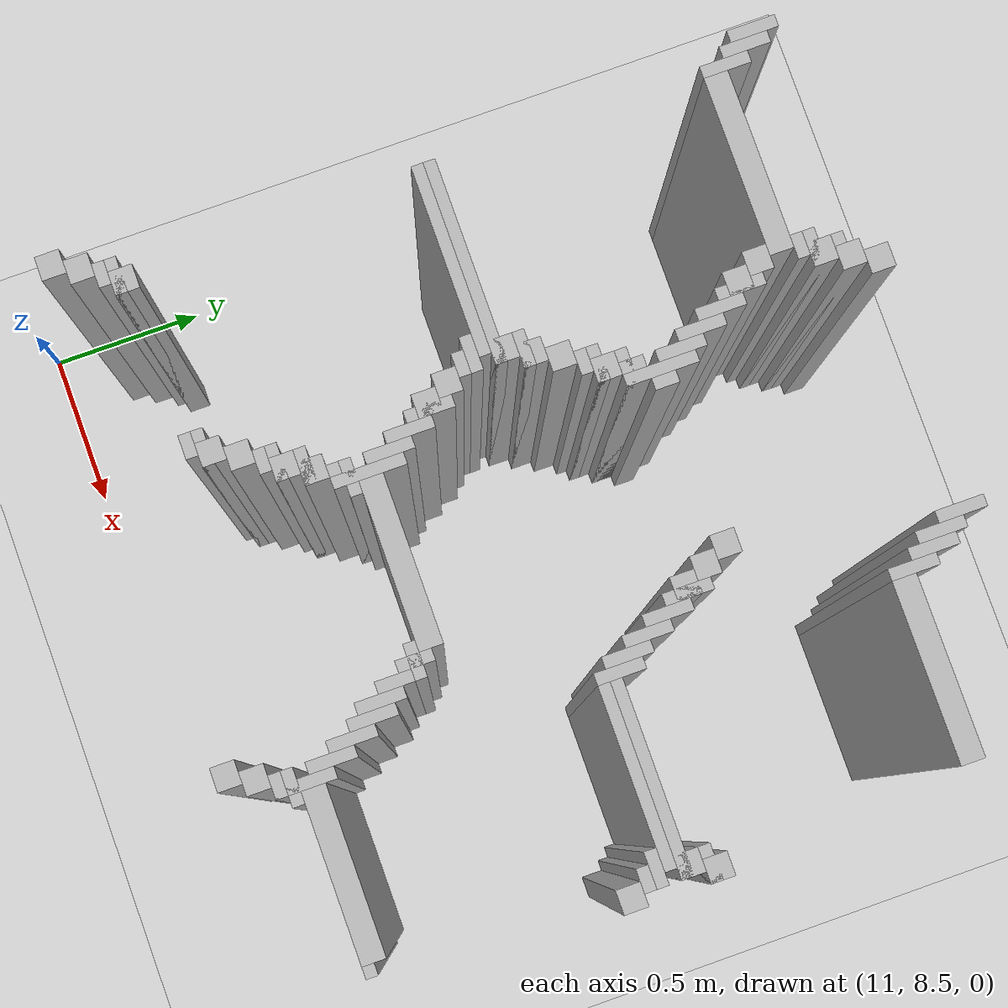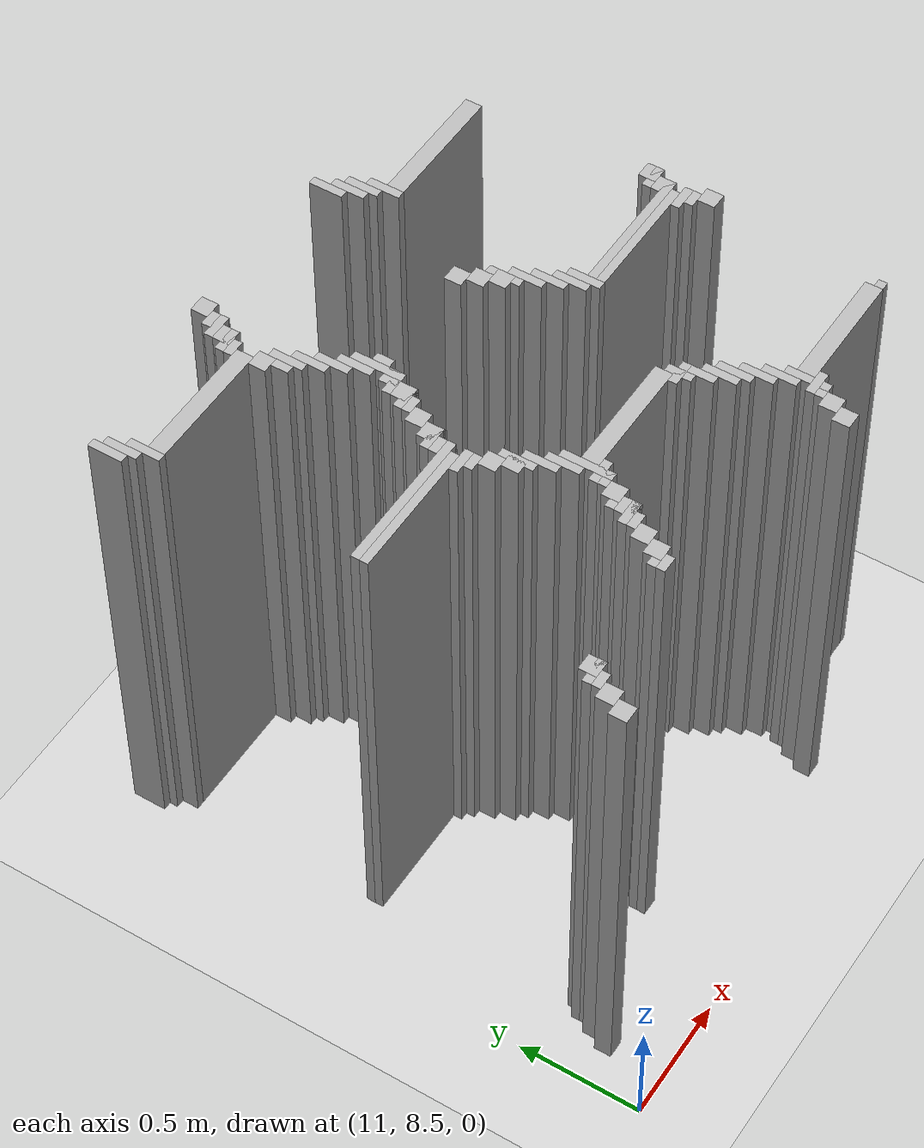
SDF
<sdf version="1.6">
 <world name="slam_world">
  <model name="ground_plane">
   <static>true</static>
   <link name="link">
    <collision name="collision">
     <geometry><plane><normal>0 0 1</normal><size>100 100</size></plane></geometry>
    </collision>
    <visual name="visual">
     <geometry><plane><normal>0 0 1</normal><size>100 100</size></plane></geometry>
     <material>
      <ambient>0.8 0.8 0.8 1</ambient>
      <diffuse>0.8 0.8 0.8 1</diffuse>
      <specular>0.8 0.8 0.8 1</specular>
     </material>
    </visual>
   </link>
  </model>
  <model name="wall_2224">
   <static>true</static>
   <pose>11.902552204176333 10.8584686774942 1.0 0 0 0</pose>
   <link name="link">
    <collision name="collision">
     <geometry><box><size>0.06960556844547564 0.06960556844547564 2.0</size></box></geometry>
    </collision>
    <visual name="visual">
     <geometry><box><size>0.06960556844547564 0.06960556844547564 2.0</size></box></geometry>
     <material><ambient>0.5 0.5 0.5 1</ambient><diffuse>0.7 0.7 0.7 1</diffuse></material>
    </visual>
   </link>
  </model>
  <model name="wall_2225">
   <static>true</static>
   <pose>12.616009280742459 10.82366589327146 1.0 0 0 0</pose>
   <link name="link">
    <collision name="collision">
     <geometry><box><size>0.03480278422273782 0.13921113689095127 2.0</size></box></geometry>
    </collision>
    <visual name="visual">
     <geometry><box><size>0.03480278422273782 0.13921113689095127 2.0</size></box></geometry>
     <material><ambient>0.5 0.5 0.5 1</ambient><diffuse>0.7 0.7 0.7 1</diffuse></material>
    </visual>
   </link>
  </model>
  <model name="wall_2238">
   <static>true</static>
   <pose>11.189095127610209 10.754060324825986 1.0 0 0 0</pose>
   <link name="link">
    <collision name="collision">
     <geometry><box><size>0.03480278422273782 0.13921113689095127 2.0</size></box></geometry>
    </collision>
    <visual name="visual">
     <geometry><box><size>0.03480278422273782 0.13921113689095127 2.0</size></box></geometry>
     <material><ambient>0.5 0.5 0.5 1</ambient><diffuse>0.7 0.7 0.7 1</diffuse></material>
    </visual>
   </link>
  </model>
  <model name="wall_2239">
   <static>true</static>
   <pose>11.867749419953595 10.788863109048723 1.0 0 0 0</pose>
   <link name="link">
    <collision name="collision">
     <geometry><box><size>0.06960556844547564 0.06960556844547564 2.0</size></box></geometry>
    </collision>
    <visual name="visual">
     <geometry><box><size>0.06960556844547564 0.06960556844547564 2.0</size></box></geometry>
     <material><ambient>0.5 0.5 0.5 1</ambient><diffuse>0.7 0.7 0.7 1</diffuse></material>
    </visual>
   </link>
  </model>
  <model name="wall_2240">
   <static>true</static>
   <pose>12.650812064965196 10.754060324825986 1.0 0 0 0</pose>
   <link name="link">
    <collision name="collision">
     <geometry><box><size>0.03480278422273782 0.13921113689095127 2.0</size></box></geometry>
    </collision>
    <visual name="visual">
     <geometry><box><size>0.03480278422273782 0.13921113689095127 2.0</size></box></geometry>
     <material><ambient>0.5 0.5 0.5 1</ambient><diffuse>0.7 0.7 0.7 1</diffuse></material>
    </visual>
   </link>
  </model>
  <model name="wall_2253">
   <static>true</static>
   <pose>11.223897911832946 10.719257540603248 1.0 0 0 0</pose>
   <link name="link">
    <collision name="collision">
     <geometry><box><size>0.03480278422273782 0.13921113689095127 2.0</size></box></geometry>
    </collision>
    <visual name="visual">
     <geometry><box><size>0.03480278422273782 0.13921113689095127 2.0</size></box></geometry>
     <material><ambient>0.5 0.5 0.5 1</ambient><diffuse>0.7 0.7 0.7 1</diffuse></material>
    </visual>
   </link>
  </model>
  <model name="wall_2254">
   <static>true</static>
   <pose>11.850348027842227 10.771461716937354 1.0 0 0 0</pose>
   <link name="link">
    <collision name="collision">
     <geometry><box><size>0.10440835266821345 0.03480278422273782 2.0</size></box></geometry>
    </collision>
    <visual name="visual">
     <geometry><box><size>0.10440835266821345 0.03480278422273782 2.0</size></box></geometry>
     <material><ambient>0.5 0.5 0.5 1</ambient><diffuse>0.7 0.7 0.7 1</diffuse></material>
    </visual>
   </link>
  </model>
  <model name="wall_2255">
   <static>true</static>
   <pose>12.685614849187935 10.719257540603248 1.0 0 0 0</pose>
   <link name="link">
    <collision name="collision">
     <geometry><box><size>0.03480278422273782 0.13921113689095127 2.0</size></box></geometry>
    </collision>
    <visual name="visual">
     <geometry><box><size>0.03480278422273782 0.13921113689095127 2.0</size></box></geometry>
     <material><ambient>0.5 0.5 0.5 1</ambient><diffuse>0.7 0.7 0.7 1</diffuse></material>
    </visual>
   </link>
  </model>
  <model name="wall_2263">
   <static>true</static>
   <pose>11.832946635730858 10.719257540603248 1.0 0 0 0</pose>
   <link name="link">
    <collision name="collision">
     <geometry><box><size>0.06960556844547564 0.06960556844547564 2.0</size></box></geometry>
    </collision>
    <visual name="visual">
     <geometry><box><size>0.06960556844547564 0.06960556844547564 2.0</size></box></geometry>
     <material><ambient>0.5 0.5 0.5 1</ambient><diffuse>0.7 0.7 0.7 1</diffuse></material>
    </visual>
   </link>
  </model>
  <model name="wall_2275">
   <static>true</static>
   <pose>11.258700696055683 10.649651972157772 1.0 0 0 0</pose>
   <link name="link">
    <collision name="collision">
     <geometry><box><size>0.03480278422273782 0.13921113689095127 2.0</size></box></geometry>
    </collision>
    <visual name="visual">
     <geometry><box><size>0.03480278422273782 0.13921113689095127 2.0</size></box></geometry>
     <material><ambient>0.5 0.5 0.5 1</ambient><diffuse>0.7 0.7 0.7 1</diffuse></material>
    </visual>
   </link>
  </model>
  <model name="wall_2276">
   <static>true</static>
   <pose>11.81554524361949 10.70185614849188 1.0 0 0 0</pose>
   <link name="link">
    <collision name="collision">
     <geometry><box><size>0.10440835266821345 0.03480278422273782 2.0</size></box></geometry>
    </collision>
    <visual name="visual">
     <geometry><box><size>0.10440835266821345 0.03480278422273782 2.0</size></box></geometry>
     <material><ambient>0.5 0.5 0.5 1</ambient><diffuse>0.7 0.7 0.7 1</diffuse></material>
    </visual>
   </link>
  </model>
  <model name="wall_2277">
   <static>true</static>
   <pose>12.720417633410673 10.649651972157772 1.0 0 0 0</pose>
   <link name="link">
    <collision name="collision">
     <geometry><box><size>0.03480278422273782 0.13921113689095127 2.0</size></box></geometry>
    </collision>
    <visual name="visual">
     <geometry><box><size>0.03480278422273782 0.13921113689095127 2.0</size></box></geometry>
     <material><ambient>0.5 0.5 0.5 1</ambient><diffuse>0.7 0.7 0.7 1</diffuse></material>
    </visual>
   </link>
  </model>
  <model name="wall_2285">
   <static>true</static>
   <pose>11.79814385150812 10.66705336426914 1.0 0 0 0</pose>
   <link name="link">
    <collision name="collision">
     <geometry><box><size>0.06960556844547564 0.03480278422273782 2.0</size></box></geometry>
    </collision>
    <visual name="visual">
     <geometry><box><size>0.06960556844547564 0.03480278422273782 2.0</size></box></geometry>
     <material><ambient>0.5 0.5 0.5 1</ambient><diffuse>0.7 0.7 0.7 1</diffuse></material>
    </visual>
   </link>
  </model>
  <model name="wall_2298">
   <static>true</static>
   <pose>11.537122969837586 10.614849187935034 1.0 0 0 0</pose>
   <link name="link">
    <collision name="collision">
     <geometry><box><size>0.5220417633410672 0.06960556844547564 2.0</size></box></geometry>
    </collision>
    <visual name="visual">
     <geometry><box><size>0.5220417633410672 0.06960556844547564 2.0</size></box></geometry>
     <material><ambient>0.5 0.5 0.5 1</ambient><diffuse>0.7 0.7 0.7 1</diffuse></material>
    </visual>
   </link>
  </model>
  <model name="wall_2299">
   <static>true</static>
   <pose>12.998839907192576 10.614849187935034 1.0 0 0 0</pose>
   <link name="link">
    <collision name="collision">
     <geometry><box><size>0.5220417633410672 0.06960556844547564 2.0</size></box></geometry>
    </collision>
    <visual name="visual">
     <geometry><box><size>0.5220417633410672 0.06960556844547564 2.0</size></box></geometry>
     <material><ambient>0.5 0.5 0.5 1</ambient><diffuse>0.7 0.7 0.7 1</diffuse></material>
    </visual>
   </link>
  </model>
  <model name="wall_2314">
   <static>true</static>
   <pose>11.79814385150812 10.54524361948956 1.0 0 0 0</pose>
   <link name="link">
    <collision name="collision">
     <geometry><box><size>0.06960556844547564 0.06960556844547564 2.0</size></box></geometry>
    </collision>
    <visual name="visual">
     <geometry><box><size>0.06960556844547564 0.06960556844547564 2.0</size></box></geometry>
     <material><ambient>0.5 0.5 0.5 1</ambient><diffuse>0.7 0.7 0.7 1</diffuse></material>
    </visual>
   </link>
  </model>
  <model name="wall_2329">
   <static>true</static>
   <pose>11.850348027842227 10.475638051044083 1.0 0 0 0</pose>
   <link name="link">
    <collision name="collision">
     <geometry><box><size>0.03480278422273782 0.13921113689095127 2.0</size></box></geometry>
    </collision>
    <visual name="visual">
     <geometry><box><size>0.03480278422273782 0.13921113689095127 2.0</size></box></geometry>
     <material><ambient>0.5 0.5 0.5 1</ambient><diffuse>0.7 0.7 0.7 1</diffuse></material>
    </visual>
   </link>
  </model>
  <model name="wall_2344">
   <static>true</static>
   <pose>11.832946635730858 10.475638051044083 1.0 0 0 0</pose>
   <link name="link">
    <collision name="collision">
     <geometry><box><size>0.06960556844547564 0.06960556844547564 2.0</size></box></geometry>
    </collision>
    <visual name="visual">
     <geometry><box><size>0.06960556844547564 0.06960556844547564 2.0</size></box></geometry>
     <material><ambient>0.5 0.5 0.5 1</ambient><diffuse>0.7 0.7 0.7 1</diffuse></material>
    </visual>
   </link>
  </model>
  <model name="wall_2359">
   <static>true</static>
   <pose>11.885150812064964 10.406032482598608 1.0 0 0 0</pose>
   <link name="link">
    <collision name="collision">
     <geometry><box><size>0.03480278422273782 0.13921113689095127 2.0</size></box></geometry>
    </collision>
    <visual name="visual">
     <geometry><box><size>0.03480278422273782 0.13921113689095127 2.0</size></box></geometry>
     <material><ambient>0.5 0.5 0.5 1</ambient><diffuse>0.7 0.7 0.7 1</diffuse></material>
    </visual>
   </link>
  </model>
  <model name="wall_2379">
   <static>true</static>
   <pose>11.919953596287703 10.336426914153131 1.0 0 0 0</pose>
   <link name="link">
    <collision name="collision">
     <geometry><box><size>0.03480278422273782 0.13921113689095127 2.0</size></box></geometry>
    </collision>
    <visual name="visual">
     <geometry><box><size>0.03480278422273782 0.13921113689095127 2.0</size></box></geometry>
     <material><ambient>0.5 0.5 0.5 1</ambient><diffuse>0.7 0.7 0.7 1</diffuse></material>
    </visual>
   </link>
  </model>
  <model name="wall_2394">
   <static>true</static>
   <pose>11.95475638051044 10.266821345707656 1.0 0 0 0</pose>
   <link name="link">
    <collision name="collision">
     <geometry><box><size>0.03480278422273782 0.13921113689095127 2.0</size></box></geometry>
    </collision>
    <visual name="visual">
     <geometry><box><size>0.03480278422273782 0.13921113689095127 2.0</size></box></geometry>
     <material><ambient>0.5 0.5 0.5 1</ambient><diffuse>0.7 0.7 0.7 1</diffuse></material>
    </visual>
   </link>
  </model>
  <model name="wall_2409">
   <static>true</static>
   <pose>11.989559164733178 10.19721577726218 1.0 0 0 0</pose>
   <link name="link">
    <collision name="collision">
     <geometry><box><size>0.03480278422273782 0.2088167053364269 2.0</size></box></geometry>
    </collision>
    <visual name="visual">
     <geometry><box><size>0.03480278422273782 0.2088167053364269 2.0</size></box></geometry>
     <material><ambient>0.5 0.5 0.5 1</ambient><diffuse>0.7 0.7 0.7 1</diffuse></material>
    </visual>
   </link>
  </model>
  <model name="wall_2429">
   <static>true</static>
   <pose>12.024361948955915 10.19721577726218 1.0 0 0 0</pose>
   <link name="link">
    <collision name="collision">
     <geometry><box><size>0.03480278422273782 0.06960556844547564 2.0</size></box></geometry>
    </collision>
    <visual name="visual">
     <geometry><box><size>0.03480278422273782 0.06960556844547564 2.0</size></box></geometry>
     <material><ambient>0.5 0.5 0.5 1</ambient><diffuse>0.7 0.7 0.7 1</diffuse></material>
    </visual>
   </link>
  </model>
  <model name="wall_2430">
   <static>true</static>
   <pose>12.494199535962876 10.19721577726218 1.0 0 0 0</pose>
   <link name="link">
    <collision name="collision">
     <geometry><box><size>0.06960556844547564 0.06960556844547564 2.0</size></box></geometry>
    </collision>
    <visual name="visual">
     <geometry><box><size>0.06960556844547564 0.06960556844547564 2.0</size></box></geometry>
     <material><ambient>0.5 0.5 0.5 1</ambient><diffuse>0.7 0.7 0.7 1</diffuse></material>
    </visual>
   </link>
  </model>
  <model name="wall_2448">
   <static>true</static>
   <pose>11.97215777262181 10.127610208816705 1.0 0 0 0</pose>
   <link name="link">
    <collision name="collision">
     <geometry><box><size>0.06960556844547564 0.06960556844547564 2.0</size></box></geometry>
    </collision>
    <visual name="visual">
     <geometry><box><size>0.06960556844547564 0.06960556844547564 2.0</size></box></geometry>
     <material><ambient>0.5 0.5 0.5 1</ambient><diffuse>0.7 0.7 0.7 1</diffuse></material>
    </visual>
   </link>
  </model>
  <model name="wall_2449">
   <static>true</static>
   <pose>12.529002320185615 10.127610208816705 1.0 0 0 0</pose>
   <link name="link">
    <collision name="collision">
     <geometry><box><size>0.06960556844547564 0.06960556844547564 2.0</size></box></geometry>
    </collision>
    <visual name="visual">
     <geometry><box><size>0.06960556844547564 0.06960556844547564 2.0</size></box></geometry>
     <material><ambient>0.5 0.5 0.5 1</ambient><diffuse>0.7 0.7 0.7 1</diffuse></material>
    </visual>
   </link>
  </model>
  <model name="wall_2462">
   <static>true</static>
   <pose>11.95475638051044 10.110208816705336 1.0 0 0 0</pose>
   <link name="link">
    <collision name="collision">
     <geometry><box><size>0.10440835266821345 0.03480278422273782 2.0</size></box></geometry>
    </collision>
    <visual name="visual">
     <geometry><box><size>0.10440835266821345 0.03480278422273782 2.0</size></box></geometry>
     <material><ambient>0.5 0.5 0.5 1</ambient><diffuse>0.7 0.7 0.7 1</diffuse></material>
    </visual>
   </link>
  </model>
  <model name="wall_2463">
   <static>true</static>
   <pose>12.581206496519721 10.058004640371228 1.0 0 0 0</pose>
   <link name="link">
    <collision name="collision">
     <geometry><box><size>0.03480278422273782 0.13921113689095127 2.0</size></box></geometry>
    </collision>
    <visual name="visual">
     <geometry><box><size>0.03480278422273782 0.13921113689095127 2.0</size></box></geometry>
     <material><ambient>0.5 0.5 0.5 1</ambient><diffuse>0.7 0.7 0.7 1</diffuse></material>
    </visual>
   </link>
  </model>
  <model name="wall_2476">
   <static>true</static>
   <pose>11.937354988399072 10.058004640371228 1.0 0 0 0</pose>
   <link name="link">
    <collision name="collision">
     <geometry><box><size>0.06960556844547564 0.06960556844547564 2.0</size></box></geometry>
    </collision>
    <visual name="visual">
     <geometry><box><size>0.06960556844547564 0.06960556844547564 2.0</size></box></geometry>
     <material><ambient>0.5 0.5 0.5 1</ambient><diffuse>0.7 0.7 0.7 1</diffuse></material>
    </visual>
   </link>
  </model>
  <model name="wall_2477">
   <static>true</static>
   <pose>12.563805104408353 10.058004640371228 1.0 0 0 0</pose>
   <link name="link">
    <collision name="collision">
     <geometry><box><size>0.06960556844547564 0.06960556844547564 2.0</size></box></geometry>
    </collision>
    <visual name="visual">
     <geometry><box><size>0.06960556844547564 0.06960556844547564 2.0</size></box></geometry>
     <material><ambient>0.5 0.5 0.5 1</ambient><diffuse>0.7 0.7 0.7 1</diffuse></material>
    </visual>
   </link>
  </model>
  <model name="wall_2490">
   <static>true</static>
   <pose>11.919953596287703 10.04060324825986 1.0 0 0 0</pose>
   <link name="link">
    <collision name="collision">
     <geometry><box><size>0.10440835266821345 0.03480278422273782 2.0</size></box></geometry>
    </collision>
    <visual name="visual">
     <geometry><box><size>0.10440835266821345 0.03480278422273782 2.0</size></box></geometry>
     <material><ambient>0.5 0.5 0.5 1</ambient><diffuse>0.7 0.7 0.7 1</diffuse></material>
    </visual>
   </link>
  </model>
  <model name="wall_2491">
   <static>true</static>
   <pose>12.616009280742459 9.988399071925754 1.0 0 0 0</pose>
   <link name="link">
    <collision name="collision">
     <geometry><box><size>0.03480278422273782 0.13921113689095127 2.0</size></box></geometry>
    </collision>
    <visual name="visual">
     <geometry><box><size>0.03480278422273782 0.13921113689095127 2.0</size></box></geometry>
     <material><ambient>0.5 0.5 0.5 1</ambient><diffuse>0.7 0.7 0.7 1</diffuse></material>
    </visual>
   </link>
  </model>
  <model name="wall_2500">
   <static>true</static>
   <pose>11.902552204176333 10.005800464037122 1.0 0 0 0</pose>
   <link name="link">
    <collision name="collision">
     <geometry><box><size>0.06960556844547564 0.03480278422273782 2.0</size></box></geometry>
    </collision>
    <visual name="visual">
     <geometry><box><size>0.06960556844547564 0.03480278422273782 2.0</size></box></geometry>
     <material><ambient>0.5 0.5 0.5 1</ambient><diffuse>0.7 0.7 0.7 1</diffuse></material>
    </visual>
   </link>
  </model>
  <model name="wall_2513">
   <static>true</static>
   <pose>11.867749419953595 9.953596287703016 1.0 0 0 0</pose>
   <link name="link">
    <collision name="collision">
     <geometry><box><size>0.06960556844547564 0.06960556844547564 2.0</size></box></geometry>
    </collision>
    <visual name="visual">
     <geometry><box><size>0.06960556844547564 0.06960556844547564 2.0</size></box></geometry>
     <material><ambient>0.5 0.5 0.5 1</ambient><diffuse>0.7 0.7 0.7 1</diffuse></material>
    </visual>
   </link>
  </model>
  <model name="wall_2514">
   <static>true</static>
   <pose>12.650812064965196 9.918793503480279 1.0 0 0 0</pose>
   <link name="link">
    <collision name="collision">
     <geometry><box><size>0.03480278422273782 0.13921113689095127 2.0</size></box></geometry>
    </collision>
    <visual name="visual">
     <geometry><box><size>0.03480278422273782 0.13921113689095127 2.0</size></box></geometry>
     <material><ambient>0.5 0.5 0.5 1</ambient><diffuse>0.7 0.7 0.7 1</diffuse></material>
    </visual>
   </link>
  </model>
  <model name="wall_2527">
   <static>true</static>
   <pose>11.832946635730858 9.88399071925754 1.0 0 0 0</pose>
   <link name="link">
    <collision name="collision">
     <geometry><box><size>0.06960556844547564 0.06960556844547564 2.0</size></box></geometry>
    </collision>
    <visual name="visual">
     <geometry><box><size>0.06960556844547564 0.06960556844547564 2.0</size></box></geometry>
     <material><ambient>0.5 0.5 0.5 1</ambient><diffuse>0.7 0.7 0.7 1</diffuse></material>
    </visual>
   </link>
  </model>
  <model name="wall_2528">
   <static>true</static>
   <pose>12.685614849187935 9.849187935034802 1.0 0 0 0</pose>
   <link name="link">
    <collision name="collision">
     <geometry><box><size>0.03480278422273782 0.13921113689095127 2.0</size></box></geometry>
    </collision>
    <visual name="visual">
     <geometry><box><size>0.03480278422273782 0.13921113689095127 2.0</size></box></geometry>
     <material><ambient>0.5 0.5 0.5 1</ambient><diffuse>0.7 0.7 0.7 1</diffuse></material>
    </visual>
   </link>
  </model>
  <model name="wall_2529">
   <static>true</static>
   <pose>13.294663573085847 9.88399071925754 1.0 0 0 0</pose>
   <link name="link">
    <collision name="collision">
     <geometry><box><size>0.06960556844547564 0.06960556844547564 2.0</size></box></geometry>
    </collision>
    <visual name="visual">
     <geometry><box><size>0.06960556844547564 0.06960556844547564 2.0</size></box></geometry>
     <material><ambient>0.5 0.5 0.5 1</ambient><diffuse>0.7 0.7 0.7 1</diffuse></material>
    </visual>
   </link>
  </model>
  <model name="wall_2541">
   <static>true</static>
   <pose>11.81554524361949 9.86658932714617 1.0 0 0 0</pose>
   <link name="link">
    <collision name="collision">
     <geometry><box><size>0.10440835266821345 0.03480278422273782 2.0</size></box></geometry>
    </collision>
    <visual name="visual">
     <geometry><box><size>0.10440835266821345 0.03480278422273782 2.0</size></box></geometry>
     <material><ambient>0.5 0.5 0.5 1</ambient><diffuse>0.7 0.7 0.7 1</diffuse></material>
    </visual>
   </link>
  </model>
  <model name="wall_2542">
   <static>true</static>
   <pose>12.720417633410673 9.814385150812065 1.0 0 0 0</pose>
   <link name="link">
    <collision name="collision">
     <geometry><box><size>0.03480278422273782 0.13921113689095127 2.0</size></box></geometry>
    </collision>
    <visual name="visual">
     <geometry><box><size>0.03480278422273782 0.13921113689095127 2.0</size></box></geometry>
     <material><ambient>0.5 0.5 0.5 1</ambient><diffuse>0.7 0.7 0.7 1</diffuse></material>
    </visual>
   </link>
  </model>
  <model name="wall_2543">
   <static>true</static>
   <pose>13.277262180974477 9.86658932714617 1.0 0 0 0</pose>
   <link name="link">
    <collision name="collision">
     <geometry><box><size>0.10440835266821345 0.03480278422273782 2.0</size></box></geometry>
    </collision>
    <visual name="visual">
     <geometry><box><size>0.10440835266821345 0.03480278422273782 2.0</size></box></geometry>
     <material><ambient>0.5 0.5 0.5 1</ambient><diffuse>0.7 0.7 0.7 1</diffuse></material>
    </visual>
   </link>
  </model>
  <model name="wall_2551">
   <static>true</static>
   <pose>11.79814385150812 9.814385150812065 1.0 0 0 0</pose>
   <link name="link">
    <collision name="collision">
     <geometry><box><size>0.06960556844547564 0.06960556844547564 2.0</size></box></geometry>
    </collision>
    <visual name="visual">
     <geometry><box><size>0.06960556844547564 0.06960556844547564 2.0</size></box></geometry>
     <material><ambient>0.5 0.5 0.5 1</ambient><diffuse>0.7 0.7 0.7 1</diffuse></material>
    </visual>
   </link>
  </model>
  <model name="wall_2552">
   <static>true</static>
   <pose>13.259860788863108 9.814385150812065 1.0 0 0 0</pose>
   <link name="link">
    <collision name="collision">
     <geometry><box><size>0.06960556844547564 0.06960556844547564 2.0</size></box></geometry>
    </collision>
    <visual name="visual">
     <geometry><box><size>0.06960556844547564 0.06960556844547564 2.0</size></box></geometry>
     <material><ambient>0.5 0.5 0.5 1</ambient><diffuse>0.7 0.7 0.7 1</diffuse></material>
    </visual>
   </link>
  </model>
  <model name="wall_2563">
   <static>true</static>
   <pose>11.537122969837586 9.796983758700696 1.0 0 0 0</pose>
   <link name="link">
    <collision name="collision">
     <geometry><box><size>0.5916473317865429 0.03480278422273782 2.0</size></box></geometry>
    </collision>
    <visual name="visual">
     <geometry><box><size>0.5916473317865429 0.03480278422273782 2.0</size></box></geometry>
     <material><ambient>0.5 0.5 0.5 1</ambient><diffuse>0.7 0.7 0.7 1</diffuse></material>
    </visual>
   </link>
  </model>
  <model name="wall_2564">
   <static>true</static>
   <pose>13.016241299303944 9.796983758700696 1.0 0 0 0</pose>
   <link name="link">
    <collision name="collision">
     <geometry><box><size>0.5568445475638051 0.03480278422273782 2.0</size></box></geometry>
    </collision>
    <visual name="visual">
     <geometry><box><size>0.5568445475638051 0.03480278422273782 2.0</size></box></geometry>
     <material><ambient>0.5 0.5 0.5 1</ambient><diffuse>0.7 0.7 0.7 1</diffuse></material>
    </visual>
   </link>
  </model>
  <model name="wall_2572">
   <static>true</static>
   <pose>11.519721577726218 9.762180974477959 1.0 0 0 0</pose>
   <link name="link">
    <collision name="collision">
     <geometry><box><size>0.5568445475638051 0.03480278422273782 2.0</size></box></geometry>
    </collision>
    <visual name="visual">
     <geometry><box><size>0.5568445475638051 0.03480278422273782 2.0</size></box></geometry>
     <material><ambient>0.5 0.5 0.5 1</ambient><diffuse>0.7 0.7 0.7 1</diffuse></material>
    </visual>
   </link>
  </model>
  <model name="wall_2573">
   <static>true</static>
   <pose>12.998839907192576 9.762180974477959 1.0 0 0 0</pose>
   <link name="link">
    <collision name="collision">
     <geometry><box><size>0.5220417633410672 0.03480278422273782 2.0</size></box></geometry>
    </collision>
    <visual name="visual">
     <geometry><box><size>0.5220417633410672 0.03480278422273782 2.0</size></box></geometry>
     <material><ambient>0.5 0.5 0.5 1</ambient><diffuse>0.7 0.7 0.7 1</diffuse></material>
    </visual>
   </link>
  </model>
  <model name="wall_2586">
   <static>true</static>
   <pose>11.780742459396752 9.72737819025522 1.0 0 0 0</pose>
   <link name="link">
    <collision name="collision">
     <geometry><box><size>0.10440835266821345 0.03480278422273782 2.0</size></box></geometry>
    </collision>
    <visual name="visual">
     <geometry><box><size>0.10440835266821345 0.03480278422273782 2.0</size></box></geometry>
     <material><ambient>0.5 0.5 0.5 1</ambient><diffuse>0.7 0.7 0.7 1</diffuse></material>
    </visual>
   </link>
  </model>
  <model name="wall_2587">
   <static>true</static>
   <pose>13.24245939675174 9.72737819025522 1.0 0 0 0</pose>
   <link name="link">
    <collision name="collision">
     <geometry><box><size>0.10440835266821345 0.03480278422273782 2.0</size></box></geometry>
    </collision>
    <visual name="visual">
     <geometry><box><size>0.10440835266821345 0.03480278422273782 2.0</size></box></geometry>
     <material><ambient>0.5 0.5 0.5 1</ambient><diffuse>0.7 0.7 0.7 1</diffuse></material>
    </visual>
   </link>
  </model>
  <model name="wall_2597">
   <static>true</static>
   <pose>11.79814385150812 9.692575406032482 1.0 0 0 0</pose>
   <link name="link">
    <collision name="collision">
     <geometry><box><size>0.06960556844547564 0.03480278422273782 2.0</size></box></geometry>
    </collision>
    <visual name="visual">
     <geometry><box><size>0.06960556844547564 0.03480278422273782 2.0</size></box></geometry>
     <material><ambient>0.5 0.5 0.5 1</ambient><diffuse>0.7 0.7 0.7 1</diffuse></material>
    </visual>
   </link>
  </model>
  <model name="wall_2598">
   <static>true</static>
   <pose>13.259860788863108 9.692575406032482 1.0 0 0 0</pose>
   <link name="link">
    <collision name="collision">
     <geometry><box><size>0.06960556844547564 0.03480278422273782 2.0</size></box></geometry>
    </collision>
    <visual name="visual">
     <geometry><box><size>0.06960556844547564 0.03480278422273782 2.0</size></box></geometry>
     <material><ambient>0.5 0.5 0.5 1</ambient><diffuse>0.7 0.7 0.7 1</diffuse></material>
    </visual>
   </link>
  </model>
  <model name="wall_2611">
   <static>true</static>
   <pose>11.832946635730858 9.640371229698376 1.0 0 0 0</pose>
   <link name="link">
    <collision name="collision">
     <geometry><box><size>0.06960556844547564 0.06960556844547564 2.0</size></box></geometry>
    </collision>
    <visual name="visual">
     <geometry><box><size>0.06960556844547564 0.06960556844547564 2.0</size></box></geometry>
     <material><ambient>0.5 0.5 0.5 1</ambient><diffuse>0.7 0.7 0.7 1</diffuse></material>
    </visual>
   </link>
  </model>
  <model name="wall_2612">
   <static>true</static>
   <pose>13.294663573085847 9.640371229698376 1.0 0 0 0</pose>
   <link name="link">
    <collision name="collision">
     <geometry><box><size>0.06960556844547564 0.06960556844547564 2.0</size></box></geometry>
    </collision>
    <visual name="visual">
     <geometry><box><size>0.06960556844547564 0.06960556844547564 2.0</size></box></geometry>
     <material><ambient>0.5 0.5 0.5 1</ambient><diffuse>0.7 0.7 0.7 1</diffuse></material>
    </visual>
   </link>
  </model>
  <model name="wall_2625">
   <static>true</static>
   <pose>11.885150812064964 9.5707656612529 1.0 0 0 0</pose>
   <link name="link">
    <collision name="collision">
     <geometry><box><size>0.03480278422273782 0.13921113689095127 2.0</size></box></geometry>
    </collision>
    <visual name="visual">
     <geometry><box><size>0.03480278422273782 0.13921113689095127 2.0</size></box></geometry>
     <material><ambient>0.5 0.5 0.5 1</ambient><diffuse>0.7 0.7 0.7 1</diffuse></material>
    </visual>
   </link>
  </model>
  <model name="wall_2639">
   <static>true</static>
   <pose>11.867749419953595 9.5707656612529 1.0 0 0 0</pose>
   <link name="link">
    <collision name="collision">
     <geometry><box><size>0.06960556844547564 0.06960556844547564 2.0</size></box></geometry>
    </collision>
    <visual name="visual">
     <geometry><box><size>0.06960556844547564 0.06960556844547564 2.0</size></box></geometry>
     <material><ambient>0.5 0.5 0.5 1</ambient><diffuse>0.7 0.7 0.7 1</diffuse></material>
    </visual>
   </link>
  </model>
  <model name="wall_2653">
   <static>true</static>
   <pose>11.919953596287703 9.501160092807424 1.0 0 0 0</pose>
   <link name="link">
    <collision name="collision">
     <geometry><box><size>0.03480278422273782 0.13921113689095127 2.0</size></box></geometry>
    </collision>
    <visual name="visual">
     <geometry><box><size>0.03480278422273782 0.13921113689095127 2.0</size></box></geometry>
     <material><ambient>0.5 0.5 0.5 1</ambient><diffuse>0.7 0.7 0.7 1</diffuse></material>
    </visual>
   </link>
  </model>
  <model name="wall_2672">
   <static>true</static>
   <pose>11.95475638051044 9.431554524361948 1.0 0 0 0</pose>
   <link name="link">
    <collision name="collision">
     <geometry><box><size>0.03480278422273782 0.13921113689095127 2.0</size></box></geometry>
    </collision>
    <visual name="visual">
     <geometry><box><size>0.03480278422273782 0.13921113689095127 2.0</size></box></geometry>
     <material><ambient>0.5 0.5 0.5 1</ambient><diffuse>0.7 0.7 0.7 1</diffuse></material>
    </visual>
   </link>
  </model>
  <model name="wall_2686">
   <static>true</static>
   <pose>11.989559164733178 9.361948955916473 1.0 0 0 0</pose>
   <link name="link">
    <collision name="collision">
     <geometry><box><size>0.03480278422273782 0.2088167053364269 2.0</size></box></geometry>
    </collision>
    <visual name="visual">
     <geometry><box><size>0.03480278422273782 0.2088167053364269 2.0</size></box></geometry>
     <material><ambient>0.5 0.5 0.5 1</ambient><diffuse>0.7 0.7 0.7 1</diffuse></material>
    </visual>
   </link>
  </model>
  <model name="wall_2704">
   <static>true</static>
   <pose>12.250580046403712 9.361948955916473 1.0 0 0 0</pose>
   <link name="link">
    <collision name="collision">
     <geometry><box><size>0.4872389791183295 0.06960556844547564 2.0</size></box></geometry>
    </collision>
    <visual name="visual">
     <geometry><box><size>0.4872389791183295 0.06960556844547564 2.0</size></box></geometry>
     <material><ambient>0.5 0.5 0.5 1</ambient><diffuse>0.7 0.7 0.7 1</diffuse></material>
    </visual>
   </link>
  </model>
  <model name="wall_2715">
   <static>true</static>
   <pose>12.511600928074245 9.309744779582367 1.0 0 0 0</pose>
   <link name="link">
    <collision name="collision">
     <geometry><box><size>0.03480278422273782 0.10440835266821345 2.0</size></box></geometry>
    </collision>
    <visual name="visual">
     <geometry><box><size>0.03480278422273782 0.10440835266821345 2.0</size></box></geometry>
     <material><ambient>0.5 0.5 0.5 1</ambient><diffuse>0.7 0.7 0.7 1</diffuse></material>
    </visual>
   </link>
  </model>
  <model name="wall_2729">
   <static>true</static>
   <pose>11.989559164733178 9.309744779582367 1.0 0 0 0</pose>
   <link name="link">
    <collision name="collision">
     <geometry><box><size>0.10440835266821345 0.03480278422273782 2.0</size></box></geometry>
    </collision>
    <visual name="visual">
     <geometry><box><size>0.10440835266821345 0.03480278422273782 2.0</size></box></geometry>
     <material><ambient>0.5 0.5 0.5 1</ambient><diffuse>0.7 0.7 0.7 1</diffuse></material>
    </visual>
   </link>
  </model>
  <model name="wall_2730">
   <static>true</static>
   <pose>12.511600928074245 9.309744779582367 1.0 0 0 0</pose>
   <link name="link">
    <collision name="collision">
     <geometry><box><size>0.10440835266821345 0.03480278422273782 2.0</size></box></geometry>
    </collision>
    <visual name="visual">
     <geometry><box><size>0.10440835266821345 0.03480278422273782 2.0</size></box></geometry>
     <material><ambient>0.5 0.5 0.5 1</ambient><diffuse>0.7 0.7 0.7 1</diffuse></material>
    </visual>
   </link>
  </model>
  <model name="wall_2743">
   <static>true</static>
   <pose>11.97215777262181 9.274941995359628 1.0 0 0 0</pose>
   <link name="link">
    <collision name="collision">
     <geometry><box><size>0.06960556844547564 0.03480278422273782 2.0</size></box></geometry>
    </collision>
    <visual name="visual">
     <geometry><box><size>0.06960556844547564 0.03480278422273782 2.0</size></box></geometry>
     <material><ambient>0.5 0.5 0.5 1</ambient><diffuse>0.7 0.7 0.7 1</diffuse></material>
    </visual>
   </link>
  </model>
  <model name="wall_2744">
   <static>true</static>
   <pose>12.546403712296984 9.24013921113689 1.0 0 0 0</pose>
   <link name="link">
    <collision name="collision">
     <geometry><box><size>0.03480278422273782 0.10440835266821345 2.0</size></box></geometry>
    </collision>
    <visual name="visual">
     <geometry><box><size>0.03480278422273782 0.10440835266821345 2.0</size></box></geometry>
     <material><ambient>0.5 0.5 0.5 1</ambient><diffuse>0.7 0.7 0.7 1</diffuse></material>
    </visual>
   </link>
  </model>
  <model name="wall_2758">
   <static>true</static>
   <pose>11.937354988399072 9.222737819025522 1.0 0 0 0</pose>
   <link name="link">
    <collision name="collision">
     <geometry><box><size>0.06960556844547564 0.06960556844547564 2.0</size></box></geometry>
    </collision>
    <visual name="visual">
     <geometry><box><size>0.06960556844547564 0.06960556844547564 2.0</size></box></geometry>
     <material><ambient>0.5 0.5 0.5 1</ambient><diffuse>0.7 0.7 0.7 1</diffuse></material>
    </visual>
   </link>
  </model>
  <model name="wall_2759">
   <static>true</static>
   <pose>12.581206496519721 9.187935034802784 1.0 0 0 0</pose>
   <link name="link">
    <collision name="collision">
     <geometry><box><size>0.03480278422273782 0.13921113689095127 2.0</size></box></geometry>
    </collision>
    <visual name="visual">
     <geometry><box><size>0.03480278422273782 0.13921113689095127 2.0</size></box></geometry>
     <material><ambient>0.5 0.5 0.5 1</ambient><diffuse>0.7 0.7 0.7 1</diffuse></material>
    </visual>
   </link>
  </model>
  <model name="wall_2774">
   <static>true</static>
   <pose>11.919953596287703 9.205336426914153 1.0 0 0 0</pose>
   <link name="link">
    <collision name="collision">
     <geometry><box><size>0.10440835266821345 0.03480278422273782 2.0</size></box></geometry>
    </collision>
    <visual name="visual">
     <geometry><box><size>0.10440835266821345 0.03480278422273782 2.0</size></box></geometry>
     <material><ambient>0.5 0.5 0.5 1</ambient><diffuse>0.7 0.7 0.7 1</diffuse></material>
    </visual>
   </link>
  </model>
  <model name="wall_2775">
   <static>true</static>
   <pose>12.616009280742459 9.153132250580047 1.0 0 0 0</pose>
   <link name="link">
    <collision name="collision">
     <geometry><box><size>0.03480278422273782 0.13921113689095127 2.0</size></box></geometry>
    </collision>
    <visual name="visual">
     <geometry><box><size>0.03480278422273782 0.13921113689095127 2.0</size></box></geometry>
     <material><ambient>0.5 0.5 0.5 1</ambient><diffuse>0.7 0.7 0.7 1</diffuse></material>
    </visual>
   </link>
  </model>
  <model name="wall_2788">
   <static>true</static>
   <pose>11.902552204176333 9.153132250580047 1.0 0 0 0</pose>
   <link name="link">
    <collision name="collision">
     <geometry><box><size>0.06960556844547564 0.06960556844547564 2.0</size></box></geometry>
    </collision>
    <visual name="visual">
     <geometry><box><size>0.06960556844547564 0.06960556844547564 2.0</size></box></geometry>
     <material><ambient>0.5 0.5 0.5 1</ambient><diffuse>0.7 0.7 0.7 1</diffuse></material>
    </visual>
   </link>
  </model>
  <model name="wall_2802">
   <static>true</static>
   <pose>11.885150812064964 9.135730858468676 1.0 0 0 0</pose>
   <link name="link">
    <collision name="collision">
     <geometry><box><size>0.10440835266821345 0.03480278422273782 2.0</size></box></geometry>
    </collision>
    <visual name="visual">
     <geometry><box><size>0.10440835266821345 0.03480278422273782 2.0</size></box></geometry>
     <material><ambient>0.5 0.5 0.5 1</ambient><diffuse>0.7 0.7 0.7 1</diffuse></material>
    </visual>
   </link>
  </model>
  <model name="wall_2803">
   <static>true</static>
   <pose>12.650812064965196 9.08352668213457 1.0 0 0 0</pose>
   <link name="link">
    <collision name="collision">
     <geometry><box><size>0.03480278422273782 0.13921113689095127 2.0</size></box></geometry>
    </collision>
    <visual name="visual">
     <geometry><box><size>0.03480278422273782 0.13921113689095127 2.0</size></box></geometry>
     <material><ambient>0.5 0.5 0.5 1</ambient><diffuse>0.7 0.7 0.7 1</diffuse></material>
    </visual>
   </link>
  </model>
  <model name="wall_2813">
   <static>true</static>
   <pose>11.867749419953595 9.100928074245939 1.0 0 0 0</pose>
   <link name="link">
    <collision name="collision">
     <geometry><box><size>0.06960556844547564 0.03480278422273782 2.0</size></box></geometry>
    </collision>
    <visual name="visual">
     <geometry><box><size>0.06960556844547564 0.03480278422273782 2.0</size></box></geometry>
     <material><ambient>0.5 0.5 0.5 1</ambient><diffuse>0.7 0.7 0.7 1</diffuse></material>
    </visual>
   </link>
  </model>
  <model name="wall_2827">
   <static>true</static>
   <pose>11.832946635730858 9.048723897911833 1.0 0 0 0</pose>
   <link name="link">
    <collision name="collision">
     <geometry><box><size>0.06960556844547564 0.06960556844547564 2.0</size></box></geometry>
    </collision>
    <visual name="visual">
     <geometry><box><size>0.06960556844547564 0.06960556844547564 2.0</size></box></geometry>
     <material><ambient>0.5 0.5 0.5 1</ambient><diffuse>0.7 0.7 0.7 1</diffuse></material>
    </visual>
   </link>
  </model>
  <model name="wall_2828">
   <static>true</static>
   <pose>12.685614849187935 9.013921113689095 1.0 0 0 0</pose>
   <link name="link">
    <collision name="collision">
     <geometry><box><size>0.03480278422273782 0.13921113689095127 2.0</size></box></geometry>
    </collision>
    <visual name="visual">
     <geometry><box><size>0.03480278422273782 0.13921113689095127 2.0</size></box></geometry>
     <material><ambient>0.5 0.5 0.5 1</ambient><diffuse>0.7 0.7 0.7 1</diffuse></material>
    </visual>
   </link>
  </model>
  <model name="wall_2843">
   <static>true</static>
   <pose>11.79814385150812 8.979118329466356 1.0 0 0 0</pose>
   <link name="link">
    <collision name="collision">
     <geometry><box><size>0.06960556844547564 0.06960556844547564 2.0</size></box></geometry>
    </collision>
    <visual name="visual">
     <geometry><box><size>0.06960556844547564 0.06960556844547564 2.0</size></box></geometry>
     <material><ambient>0.5 0.5 0.5 1</ambient><diffuse>0.7 0.7 0.7 1</diffuse></material>
    </visual>
   </link>
  </model>
  <model name="wall_2844">
   <static>true</static>
   <pose>12.720417633410673 8.92691415313225 1.0 0 0 0</pose>
   <link name="link">
    <collision name="collision">
     <geometry><box><size>0.03480278422273782 0.17401392111368907 2.0</size></box></geometry>
    </collision>
    <visual name="visual">
     <geometry><box><size>0.03480278422273782 0.17401392111368907 2.0</size></box></geometry>
     <material><ambient>0.5 0.5 0.5 1</ambient><diffuse>0.7 0.7 0.7 1</diffuse></material>
    </visual>
   </link>
  </model>
  <model name="wall_2859">
   <static>true</static>
   <pose>11.780742459396752 8.961716937354987 1.0 0 0 0</pose>
   <link name="link">
    <collision name="collision">
     <geometry><box><size>0.10440835266821345 0.03480278422273782 2.0</size></box></geometry>
    </collision>
    <visual name="visual">
     <geometry><box><size>0.10440835266821345 0.03480278422273782 2.0</size></box></geometry>
     <material><ambient>0.5 0.5 0.5 1</ambient><diffuse>0.7 0.7 0.7 1</diffuse></material>
    </visual>
   </link>
  </model>
  <model name="wall_2860">
   <static>true</static>
   <pose>12.981438515081207 8.944315545243619 1.0 0 0 0</pose>
   <link name="link">
    <collision name="collision">
     <geometry><box><size>0.4872389791183295 0.06960556844547564 2.0</size></box></geometry>
    </collision>
    <visual name="visual">
     <geometry><box><size>0.4872389791183295 0.06960556844547564 2.0</size></box></geometry>
     <material><ambient>0.5 0.5 0.5 1</ambient><diffuse>0.7 0.7 0.7 1</diffuse></material>
    </visual>
   </link>
  </model>
  <model name="wall_2871">
   <static>true</static>
   <pose>11.276102088167052 8.909512761020881 1.0 0 0 0</pose>
   <link name="link">
    <collision name="collision">
     <geometry><box><size>0.06960556844547564 0.06960556844547564 2.0</size></box></geometry>
    </collision>
    <visual name="visual">
     <geometry><box><size>0.06960556844547564 0.06960556844547564 2.0</size></box></geometry>
     <material><ambient>0.5 0.5 0.5 1</ambient><diffuse>0.7 0.7 0.7 1</diffuse></material>
    </visual>
   </link>
  </model>
  <model name="wall_2872">
   <static>true</static>
   <pose>11.763341067285383 8.92691415313225 1.0 0 0 0</pose>
   <link name="link">
    <collision name="collision">
     <geometry><box><size>0.06960556844547564 0.03480278422273782 2.0</size></box></geometry>
    </collision>
    <visual name="visual">
     <geometry><box><size>0.06960556844547564 0.03480278422273782 2.0</size></box></geometry>
     <material><ambient>0.5 0.5 0.5 1</ambient><diffuse>0.7 0.7 0.7 1</diffuse></material>
    </visual>
   </link>
  </model>
  <model name="wall_2873">
   <static>true</static>
   <pose>13.24245939675174 8.92691415313225 1.0 0 0 0</pose>
   <link name="link">
    <collision name="collision">
     <geometry><box><size>0.03480278422273782 0.03480278422273782 2.0</size></box></geometry>
    </collision>
    <visual name="visual">
     <geometry><box><size>0.03480278422273782 0.03480278422273782 2.0</size></box></geometry>
     <material><ambient>0.5 0.5 0.5 1</ambient><diffuse>0.7 0.7 0.7 1</diffuse></material>
    </visual>
   </link>
  </model>
  <model name="wall_2887">
   <static>true</static>
   <pose>11.258700696055683 8.892111368909513 1.0 0 0 0</pose>
   <link name="link">
    <collision name="collision">
     <geometry><box><size>0.10440835266821345 0.03480278422273782 2.0</size></box></geometry>
    </collision>
    <visual name="visual">
     <geometry><box><size>0.10440835266821345 0.03480278422273782 2.0</size></box></geometry>
     <material><ambient>0.5 0.5 0.5 1</ambient><diffuse>0.7 0.7 0.7 1</diffuse></material>
    </visual>
   </link>
  </model>
  <model name="wall_2888">
   <static>true</static>
   <pose>12.720417633410673 8.892111368909513 1.0 0 0 0</pose>
   <link name="link">
    <collision name="collision">
     <geometry><box><size>0.10440835266821345 0.03480278422273782 2.0</size></box></geometry>
    </collision>
    <visual name="visual">
     <geometry><box><size>0.10440835266821345 0.03480278422273782 2.0</size></box></geometry>
     <material><ambient>0.5 0.5 0.5 1</ambient><diffuse>0.7 0.7 0.7 1</diffuse></material>
    </visual>
   </link>
  </model>
  <model name="wall_2902">
   <static>true</static>
   <pose>11.241299303944315 8.857308584686775 1.0 0 0 0</pose>
   <link name="link">
    <collision name="collision">
     <geometry><box><size>0.06960556844547564 0.03480278422273782 2.0</size></box></geometry>
    </collision>
    <visual name="visual">
     <geometry><box><size>0.06960556844547564 0.03480278422273782 2.0</size></box></geometry>
     <material><ambient>0.5 0.5 0.5 1</ambient><diffuse>0.7 0.7 0.7 1</diffuse></material>
    </visual>
   </link>
  </model>
  <model name="wall_2903">
   <static>true</static>
   <pose>12.703016241299304 8.857308584686775 1.0 0 0 0</pose>
   <link name="link">
    <collision name="collision">
     <geometry><box><size>0.06960556844547564 0.03480278422273782 2.0</size></box></geometry>
    </collision>
    <visual name="visual">
     <geometry><box><size>0.06960556844547564 0.03480278422273782 2.0</size></box></geometry>
     <material><ambient>0.5 0.5 0.5 1</ambient><diffuse>0.7 0.7 0.7 1</diffuse></material>
    </visual>
   </link>
  </model>
  <model name="wall_2917">
   <static>true</static>
   <pose>11.206496519721577 8.805104408352667 1.0 0 0 0</pose>
   <link name="link">
    <collision name="collision">
     <geometry><box><size>0.06960556844547564 0.06960556844547564 2.0</size></box></geometry>
    </collision>
    <visual name="visual">
     <geometry><box><size>0.06960556844547564 0.06960556844547564 2.0</size></box></geometry>
     <material><ambient>0.5 0.5 0.5 1</ambient><diffuse>0.7 0.7 0.7 1</diffuse></material>
    </visual>
   </link>
  </model>
  <model name="wall_2918">
   <static>true</static>
   <pose>12.668213457076565 8.805104408352667 1.0 0 0 0</pose>
   <link name="link">
    <collision name="collision">
     <geometry><box><size>0.06960556844547564 0.06960556844547564 2.0</size></box></geometry>
    </collision>
    <visual name="visual">
     <geometry><box><size>0.06960556844547564 0.06960556844547564 2.0</size></box></geometry>
     <material><ambient>0.5 0.5 0.5 1</ambient><diffuse>0.7 0.7 0.7 1</diffuse></material>
    </visual>
   </link>
  </model>
  <model name="wall_2932">
   <static>true</static>
   <pose>11.17169373549884 8.735498839907192 1.0 0 0 0</pose>
   <link name="link">
    <collision name="collision">
     <geometry><box><size>0.06960556844547564 0.06960556844547564 2.0</size></box></geometry>
    </collision>
    <visual name="visual">
     <geometry><box><size>0.06960556844547564 0.06960556844547564 2.0</size></box></geometry>
     <material><ambient>0.5 0.5 0.5 1</ambient><diffuse>0.7 0.7 0.7 1</diffuse></material>
    </visual>
   </link>
  </model>
  <model name="wall_2933">
   <static>true</static>
   <pose>12.633410672853827 8.735498839907192 1.0 0 0 0</pose>
   <link name="link">
    <collision name="collision">
     <geometry><box><size>0.06960556844547564 0.06960556844547564 2.0</size></box></geometry>
    </collision>
    <visual name="visual">
     <geometry><box><size>0.06960556844547564 0.06960556844547564 2.0</size></box></geometry>
     <material><ambient>0.5 0.5 0.5 1</ambient><diffuse>0.7 0.7 0.7 1</diffuse></material>
    </visual>
   </link>
  </model>
 </world>
</sdf>
